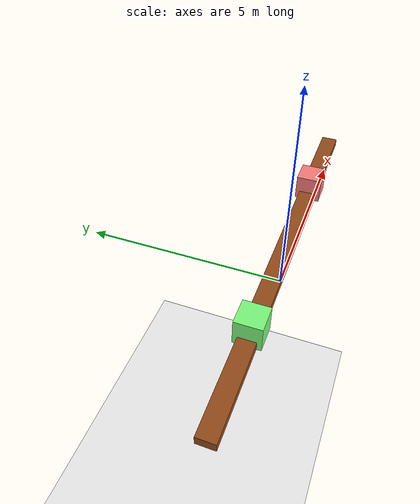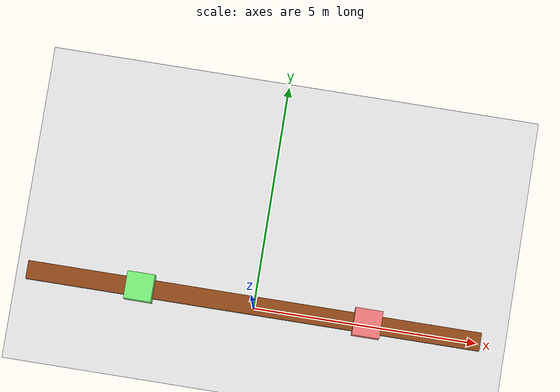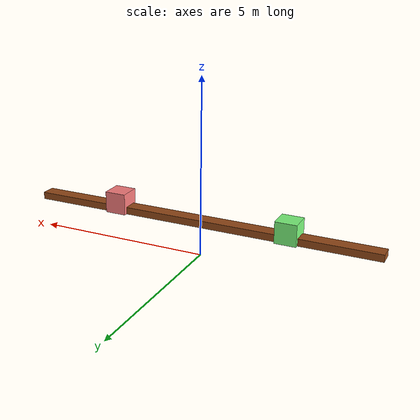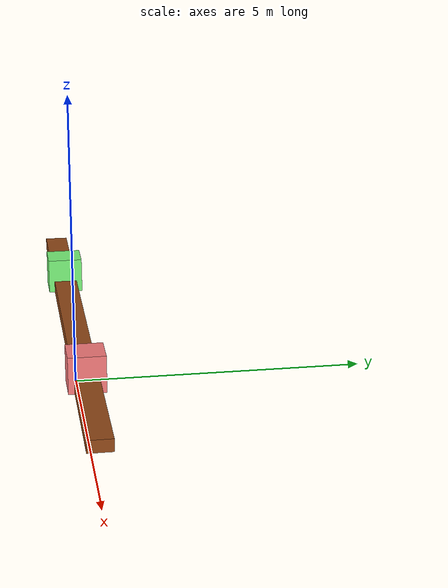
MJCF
<mujoco>
  <option gravity="0 0 -9.81"/>
  <worldbody>
    <light diffuse="0.5 0.5 0.5" pos="0 0 5"/>
    <body name="ground" pos="0 0 -10">
      <geom type="plane" size="30 30 0.1" rgba="0.95 0.95 0.95 1"/>
    </body>
    <body name="seesaw" pos="0 0 1">
      <geom type="box" size="5 0.2 0.1" mass="0.1" rgba="0.6 0.3 0.1 1"/>
      <joint type="hinge" axis="0 1 0" pos="0 0 1"/>
    </body>
    <body name="mass_left" pos="-2.5 0 1.2">
      <geom type="box" size="0.3 0.3 0.3" mass="3" rgba="0.5 1 0.5 1"/>
    </body>
    <body name="mass_right" pos="2.5 0 1.2">
      <geom type="box" size="0.3 0.3 0.3" mass="5" rgba="1 0.5 0.5 1"/>
    </body>
  </worldbody>
</mujoco>
